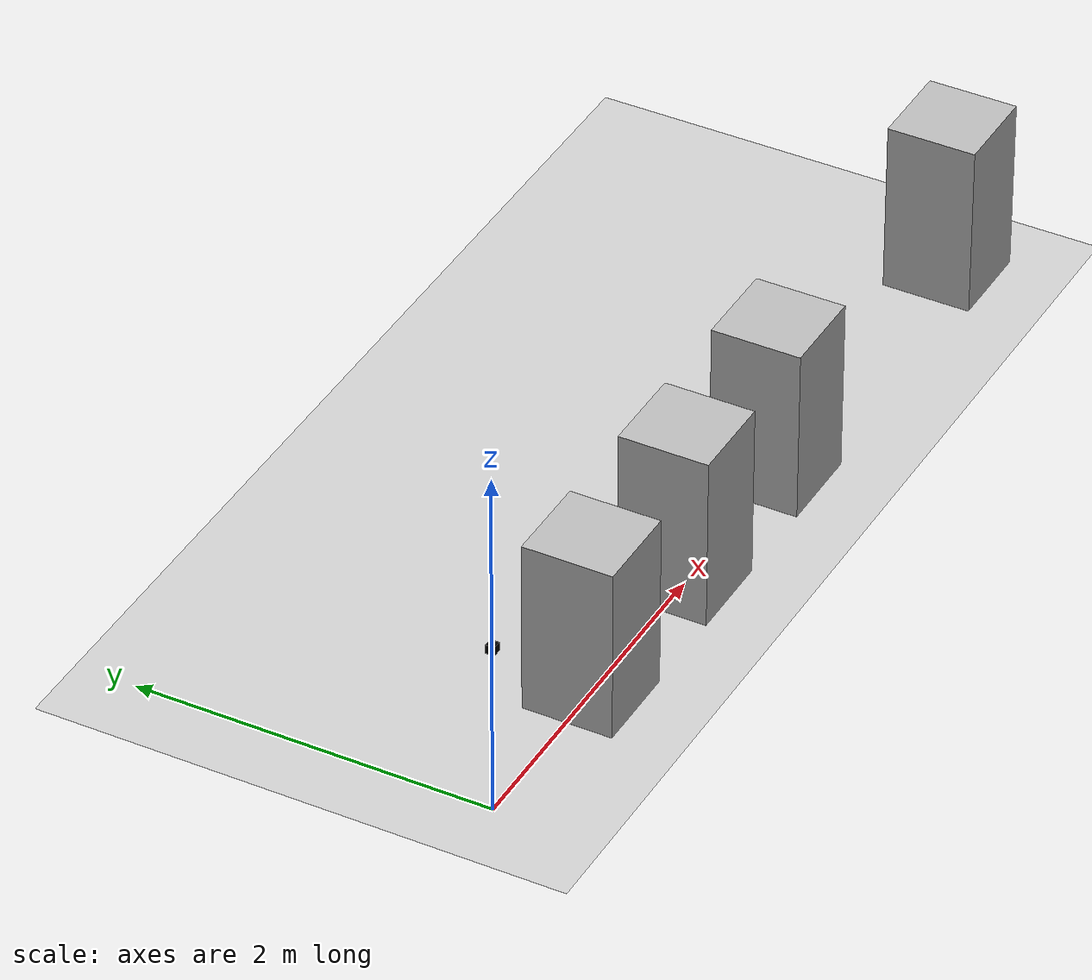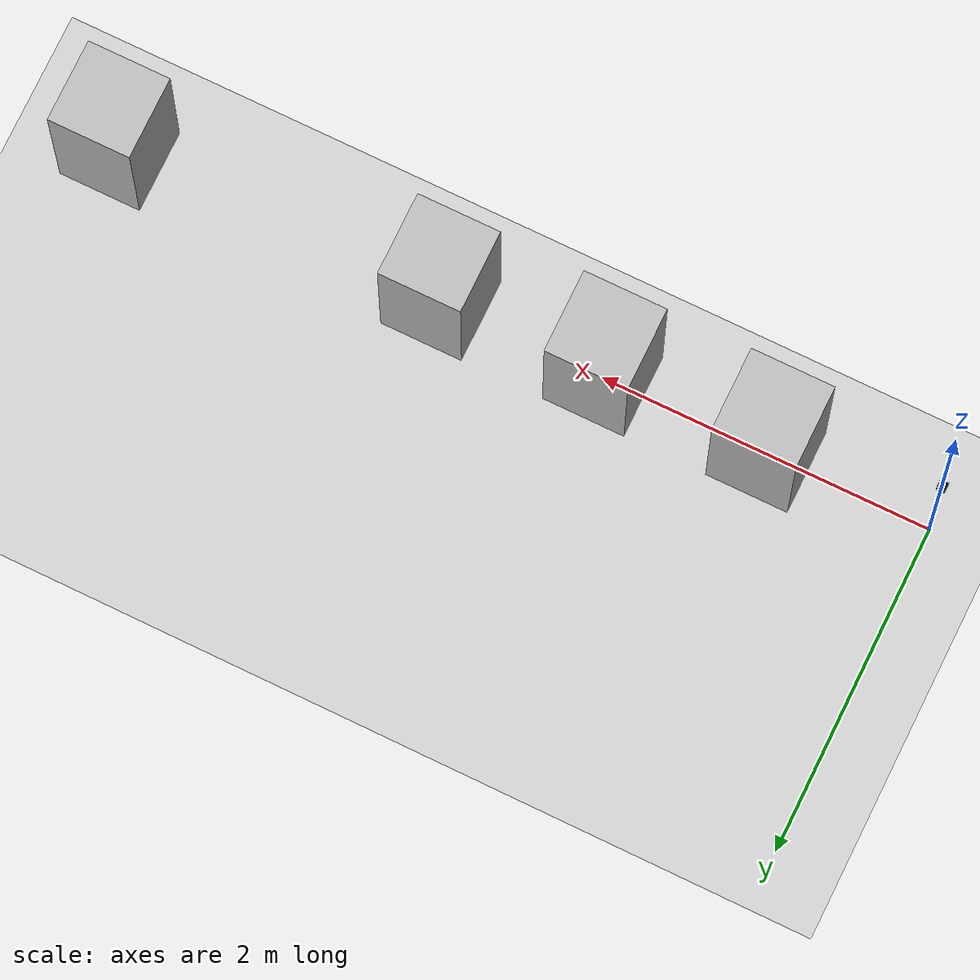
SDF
<?xml version="1.0" ?>
<sdf version="1.7">
  <world name="depth_camera_test_world">

    <gravity>0 0 -9.8</gravity>

    <!-- 地面 -->
    <include>
      <uri>model://ground_plane</uri>
    </include>

    <!-- 光照 -->
    <include>
      <uri>model://sun</uri>
    </include>

    <!-- 固定相机支架 -->
    <model name="fixed_depth_camera">
      <static>true</static>
      <!-- 世界坐标: x y z roll pitch yaw -->
      <pose>0 0 1.0 0 0 0</pose>

      <link name="camera_link">
        <sensor name="depth_camera" type="depth">
          <always_on>true</always_on>
          <update_rate>30</update_rate>
          <visualize>false</visualize>
          <pose>0 0 0 0 0.4538 0</pose>

          <camera>
            <horizontal_fov>1.012</horizontal_fov>

            <image>
              <width>64</width>
              <height>64</height>
              <format>R32F</format>
            </image>

            <clip>
              <near>0.01</near>
              <far>3.0</far>
            </clip>
          </camera>

          <plugin name="depth_camera_plugin" filename="libgazebo_ros_camera.so">
            <ros>
              <namespace>/depth</namespace>  <!-- 你的命名空间 -->
              <argument>~/image_raw:=image_raw</argument>
              <argument>~/camera_info:=camera_info</argument>
              <argument>~/depth/image_raw:=depth/image_raw</argument>
              <argument>~/depth/camera_info:=depth/camera_info</argument>
              <argument>~/points:=points</argument>
            </ros>
            <frame_name>camera_link</frame_name>
            <!-- 其余配置保持不变 -->
          </plugin>
        </sensor>

        <visual name="camera_visual">
          <geometry>
            <box>
              <size>0.05 0.05 0.05</size>
            </box>
          </geometry>
          <material>
            <ambient>0 0 0 1</ambient>
            <diffuse>0 0 0 1</diffuse>
          </material>
        </visual>
      </link>
    </model>

    <!-- 1m 目标 -->
    <model name="box_1m">
      <static>true</static>
      <pose>1.0 0 0.5 0 0 0</pose>
      <link name="link">
        <collision name="collision">
          <geometry>
            <box>
              <size>0.5 0.5 1.0</size>
            </box>
          </geometry>
        </collision>
        <visual name="visual">
          <geometry>
            <box>
              <size>0.5 0.5 1.0</size>
            </box>
          </geometry>
        </visual>
      </link>
    </model>

    <!-- 2m 目标 -->
    <model name="box_2m">
      <static>true</static>
      <pose>2.0 0 0.5 0 0 0</pose>
      <link name="link">
        <collision name="collision">
          <geometry>
            <box>
              <size>0.5 0.5 1.0</size>
            </box>
          </geometry>
        </collision>
        <visual name="visual">
          <geometry>
            <box>
              <size>0.5 0.5 1.0</size>
            </box>
          </geometry>
        </visual>
      </link>
    </model>

    <!-- 3m 目标 -->
    <model name="box_3m">
      <static>true</static>
      <pose>3.0 0 0.5 0 0 0</pose>
      <link name="link">
        <collision name="collision">
          <geometry>
            <box>
              <size>0.5 0.5 1.0</size>
            </box>
          </geometry>
        </collision>
        <visual name="visual">
          <geometry>
            <box>
              <size>0.5 0.5 1.0</size>
            </box>
          </geometry>
        </visual>
      </link>
    </model>

    <!-- 5m 目标 -->
    <model name="box_5m">
      <static>true</static>
      <pose>5.0 0 0.5 0 0 0</pose>
      <link name="link">
        <collision name="collision">
          <geometry>
            <box>
              <size>0.5 0.5 1.0</size>
            </box>
          </geometry>
        </collision>
        <visual name="visual">
          <geometry>
            <box>
              <size>0.5 0.5 1.0</size>
            </box>
          </geometry>
        </visual>
      </link>
    </model>

  </world>
</sdf>
